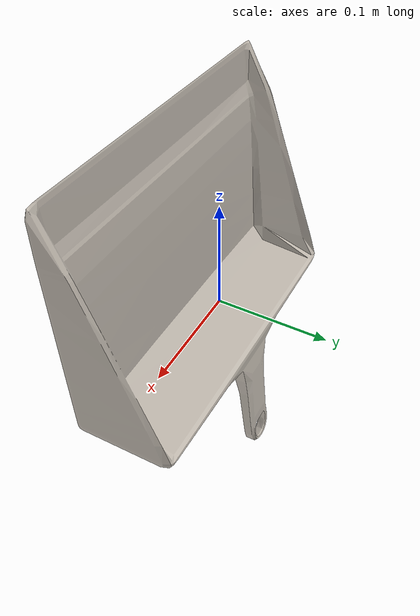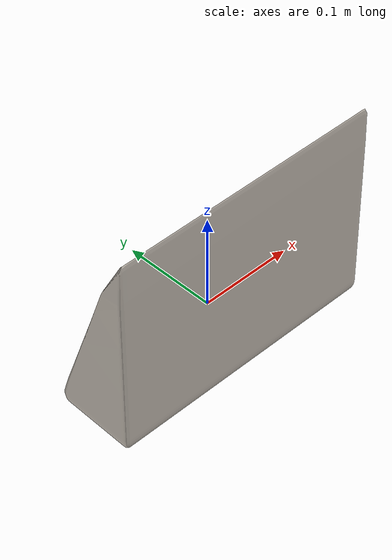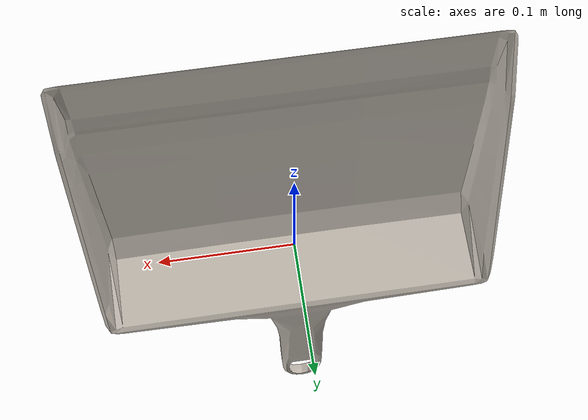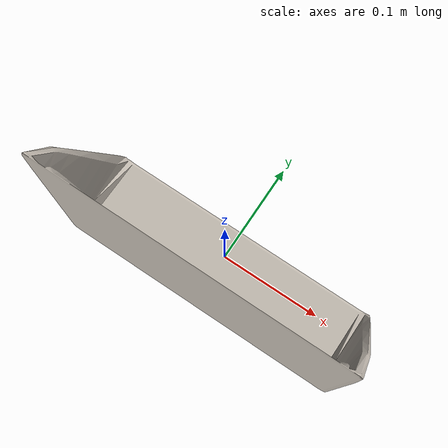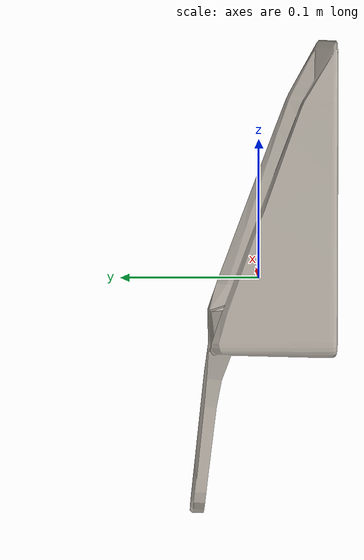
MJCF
<mujoco model="dustpan_d91eae20">
  <compiler angle="radian"/>
  <asset>
    <texture type="2d" name="dustpan_d91eae20_tex" file="dustpan_d91eae20_visual_0.png"/>
    <material name="dustpan_d91eae20_mat" texture="dustpan_d91eae20_tex"/>
    <mesh name="dustpan_d91eae20_visual" content_type="model/obj" file="dustpan_d91eae20_visual.obj" scale="-1 1 1"/>
    <mesh name="dustpan_d91eae20_c0" content_type="model/obj" file="dustpan_d91eae20_c0.obj" scale="-1 1 1"/>
    <mesh name="dustpan_d91eae20_c1" content_type="model/obj" file="dustpan_d91eae20_c1.obj" scale="-1 1 1"/>
    <mesh name="dustpan_d91eae20_c2" content_type="model/obj" file="dustpan_d91eae20_c2.obj" scale="-1 1 1"/>
    <mesh name="dustpan_d91eae20_c3" content_type="model/obj" file="dustpan_d91eae20_c3.obj" scale="-1 1 1"/>
    <mesh name="dustpan_d91eae20_c4" content_type="model/obj" file="dustpan_d91eae20_c4.obj" scale="-1 1 1"/>
    <mesh name="dustpan_d91eae20_c5" content_type="model/obj" file="dustpan_d91eae20_c5.obj" scale="-1 1 1"/>
    <mesh name="dustpan_d91eae20_c6" content_type="model/obj" file="dustpan_d91eae20_c6.obj" scale="-1 1 1"/>
    <mesh name="dustpan_d91eae20_c7" content_type="model/obj" file="dustpan_d91eae20_c7.obj" scale="-1 1 1"/>
    <mesh name="dustpan_d91eae20_c8" content_type="model/obj" file="dustpan_d91eae20_c8.obj" scale="-1 1 1"/>
    <mesh name="dustpan_d91eae20_c9" content_type="model/obj" file="dustpan_d91eae20_c9.obj" scale="-1 1 1"/>
  </asset>
  <worldbody>
    <body name="dustpan_d91eae20">
      <freejoint/>
      <geom name="dustpan_d91eae20_visual" type="mesh" mesh="dustpan_d91eae20_visual" mass="1e-8" contype="0" conaffinity="0" group="2" material="dustpan_d91eae20_mat"/>
      <geom name="dustpan_d91eae20_c0" type="mesh" mesh="dustpan_d91eae20_c0" group="3" density="112.309" friction="0.9 0.05 0.005" condim="4" rgba="0.4 0.5 0.9 0.35"/>
      <geom name="dustpan_d91eae20_c1" type="mesh" mesh="dustpan_d91eae20_c1" group="3" density="112.309" friction="0.9 0.05 0.005" condim="4" rgba="0.4 0.5 0.9 0.35"/>
      <geom name="dustpan_d91eae20_c2" type="mesh" mesh="dustpan_d91eae20_c2" group="3" density="112.309" friction="0.9 0.05 0.005" condim="4" rgba="0.4 0.5 0.9 0.35"/>
      <geom name="dustpan_d91eae20_c3" type="mesh" mesh="dustpan_d91eae20_c3" group="3" density="112.309" friction="0.9 0.05 0.005" condim="4" rgba="0.4 0.5 0.9 0.35"/>
      <geom name="dustpan_d91eae20_c4" type="mesh" mesh="dustpan_d91eae20_c4" group="3" density="112.309" friction="0.9 0.05 0.005" condim="4" rgba="0.4 0.5 0.9 0.35"/>
      <geom name="dustpan_d91eae20_c5" type="mesh" mesh="dustpan_d91eae20_c5" group="3" density="112.309" friction="0.9 0.05 0.005" condim="4" rgba="0.4 0.5 0.9 0.35"/>
      <geom name="dustpan_d91eae20_c6" type="mesh" mesh="dustpan_d91eae20_c6" group="3" density="112.309" friction="0.9 0.05 0.005" condim="4" rgba="0.4 0.5 0.9 0.35"/>
      <geom name="dustpan_d91eae20_c7" type="mesh" mesh="dustpan_d91eae20_c7" group="3" density="112.309" friction="0.9 0.05 0.005" condim="4" rgba="0.4 0.5 0.9 0.35"/>
      <geom name="dustpan_d91eae20_c8" type="mesh" mesh="dustpan_d91eae20_c8" group="3" density="112.309" friction="0.9 0.05 0.005" condim="4" rgba="0.4 0.5 0.9 0.35"/>
      <geom name="dustpan_d91eae20_c9" type="mesh" mesh="dustpan_d91eae20_c9" group="3" density="112.309" friction="0.9 0.05 0.005" condim="4" rgba="0.4 0.5 0.9 0.35"/>
    </body>
  </worldbody>
</mujoco>
